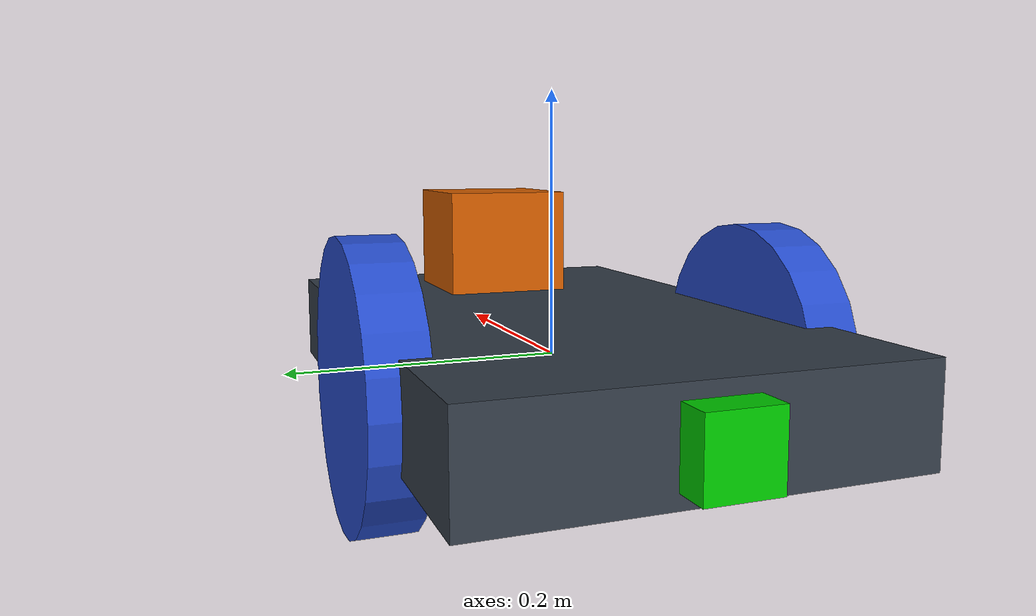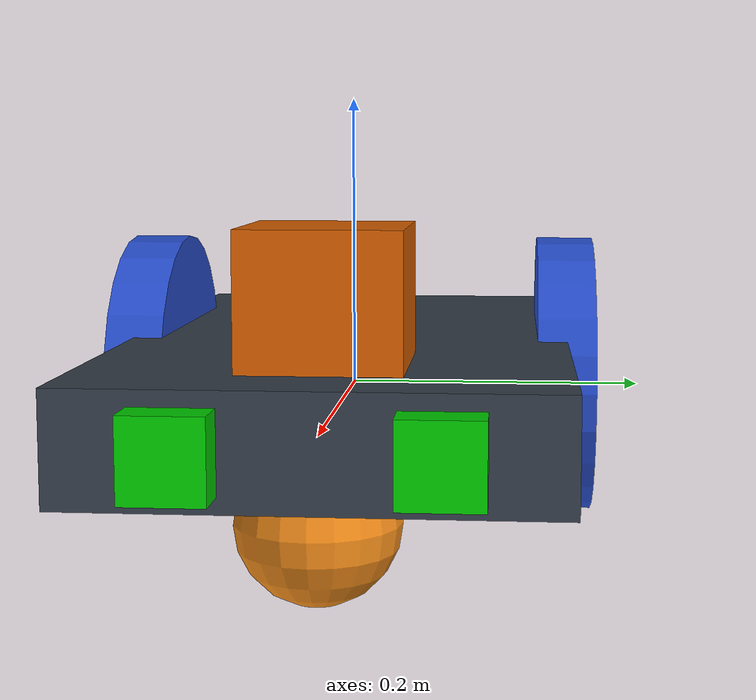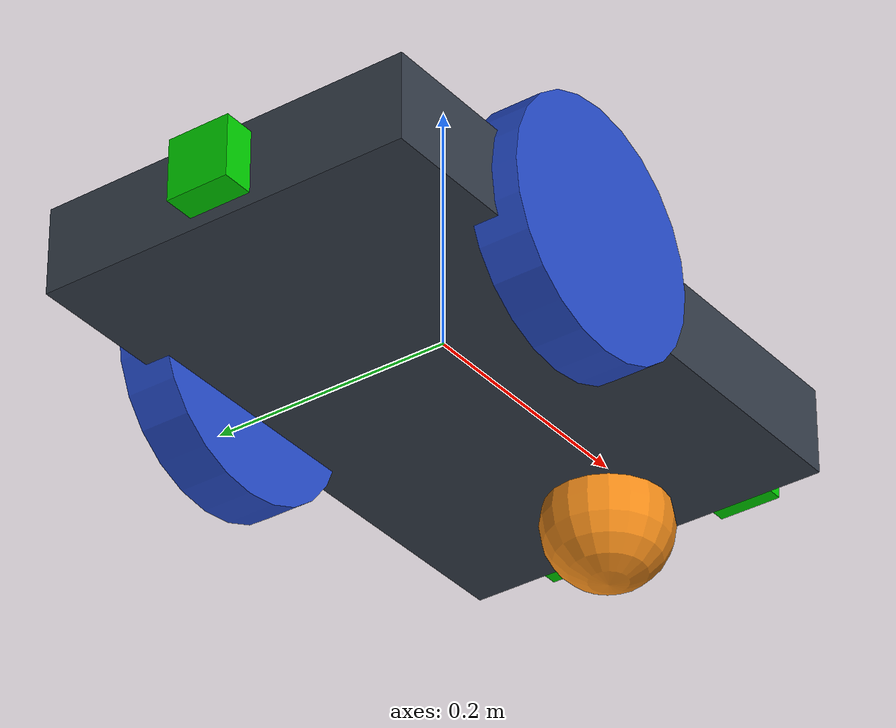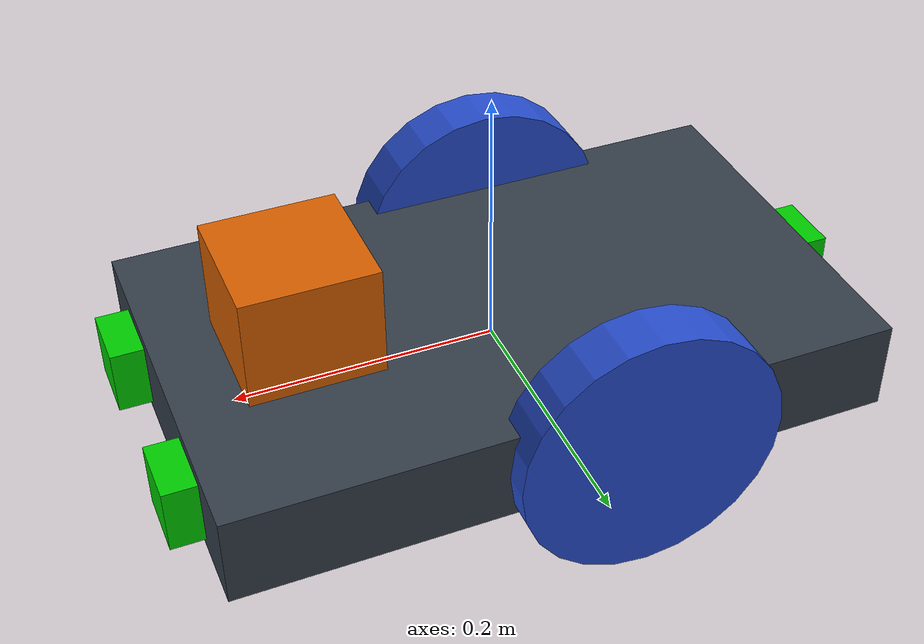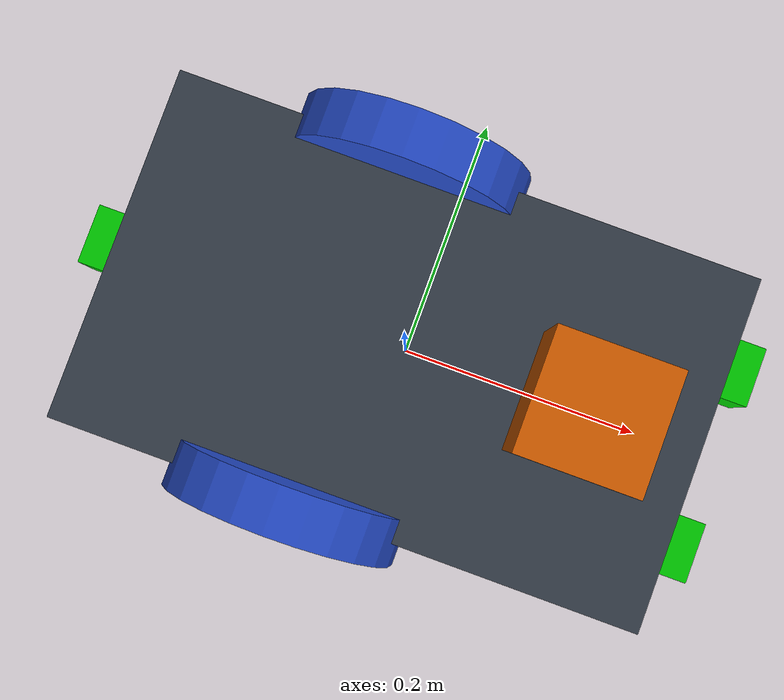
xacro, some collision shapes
<?xml version="1.0" ?>

<robot name="demo_bot" xmlns:xacro="https://www.ros.org/wiki/xacro" >

  <xacro:property name="cameraSize" value="0.05"/>
  <xacro:property name="cameraMass" value="0.1"/>

  <material name="black">
    <color rgba="0.0 0.0 0.0 1.0"/>
  </material>
  <material name="blue">
    <color rgba="0.203125 0.23828125 0.28515625 1.0"/>
  </material>
  <material name="green">
    <color rgba="0.0 0.8 0.0 1.0"/>
  </material>
  <material name="grey">
    <color rgba="0.2 0.2 0.2 1.0"/>
  </material>
  <material name="orange">
    <color rgba="1.0 0.423529411765 0.0392156862745 1.0"/>
  </material>
  <material name="brown">
    <color rgba="0.870588235294 0.811764705882 0.764705882353 1.0"/>
  </material>
  <material name="red">
    <color rgba="0.80078125 0.12890625 0.1328125 1.0"/>
  </material>
  <material name="white">
    <color rgba="1.0 1.0 1.0 1.0"/>
  </material>

  <gazebo reference="link_chassis">
    <material>Gazebo/Orange</material>
  </gazebo>
  <gazebo reference="link_left_wheel">
    <material>Gazebo/Blue</material>
  </gazebo>
  <gazebo reference="link_right_wheel">
    <material>Gazebo/Blue</material>
  </gazebo>

  <link name="link_chassis">
    <!-- pose and inertial -->
    <pose>0 0 0.1 0 0 0</pose>

    <inertial>
      <mass value="5"/>
      <origin rpy="0 0 0" xyz="0 0 0.1"/>
      <inertia ixx="0.0395416666667" ixy="0" ixz="0" iyy="0.106208333333" iyz="0" izz="0.106208333333"/>
    </inertial>

    <collision name="collision_chassis">
      <geometry>
        <box size="0.5 0.3 0.07"/>
      </geometry>
    </collision>

    <visual>
      <origin rpy="0 0 0" xyz="0 0 0"/>
      <geometry>
        <box size="0.5 0.3 0.07"/>
      </geometry>
      <material name="blue"/>
    </visual>

    <!-- caster front -->
    <collision name="caster_front_collision">
      <origin rpy=" 0 0 0" xyz="0.35 0 -0.05"/>
      <geometry>
        <sphere radius="0.05"/>
      </geometry>
      <surface>
        <friction>
          <ode>
            <mu>0</mu>
            <mu2>0</mu2>
            <slip1>1.0</slip1>
            <slip2>1.0</slip2>
          </ode>
        </friction>
      </surface>
    </collision>
    <visual name="caster_front_visual">
      <origin rpy=" 0 0 0" xyz="0.2 0 -0.05"/>
      <geometry>
        <sphere radius="0.05"/>
      </geometry>
    </visual>
    </link>

  <!-- Create wheel right -->

  <link name="link_right_wheel">
    <inertial>
      <mass value="0.2"/>
      <origin rpy="0 1.5707 1.5707" xyz="0 0 0"/>
      <inertia ixx="0.00052666666" ixy="0" ixz="0" iyy="0.00052666666" iyz="0" izz="0.001"/>
    </inertial>

    <collision name="link_right_wheel_collision">
      <origin rpy="0 1.5707 1.5707" xyz="0 0 0" />
      <geometry>
        <cylinder length="0.04" radius="0.1"/>
      </geometry>
    </collision>

    <visual name="link_right_wheel_visual">
      <origin rpy="0 1.5707 1.5707" xyz="0 0 0"/>
      <geometry>
        <cylinder length="0.04" radius="0.1"/>
      </geometry>
    </visual>

  </link>

  <!--   Joint for right wheel  -->
  <joint name="joint_right_wheel" type="continuous">
    <origin rpy="0 0 0" xyz="-0.05 0.15 0"/>
    <child link="link_right_wheel" />
    <parent link="link_chassis"/>
    <axis rpy="0 0 0" xyz="0 1 0"/>
    <limit effort="10000" velocity="1000"/>
    <joint_properties damping="1.0" friction="1.0" />
  </joint>

  <!-- Left Wheel link -->

  <link name="link_left_wheel">
    <inertial>
      <mass value="0.2"/>
      <origin rpy="0 1.5707 1.5707" xyz="0 0 0"/>
      <inertia ixx="0.00052666666" ixy="0" ixz="0" iyy="0.00052666666" iyz="0" izz="0.001"/>
    </inertial>

    <collision name="link_left_wheel_collision">
      <origin rpy="0 1.5707 1.5707" xyz="0 0 0" />
      <geometry>
        <cylinder length="0.04" radius="0.1"/>
      </geometry>
    </collision>

    <visual name="link_left_wheel_visual">
      <origin rpy="0 1.5707 1.5707" xyz="0 0 0"/>
      <geometry>
        <cylinder length="0.04" radius="0.1"/>
      </geometry>
    </visual>

  </link>

  <!--   Joint for left wheel  -->
  <joint name="joint_left_wheel" type="continuous">
    <origin rpy="0 0 0" xyz="-0.05 -0.15 0"/>
    <child link="link_left_wheel" />
    <parent link="link_chassis"/>
    <axis rpy="0 0 0" xyz="0 1 0"/>
    <limit effort="10000" velocity="1000"/>
    <joint_properties damping="1.0" friction="1.0" />
  </joint>

  <!-- camera front 1 -->
  <link name="camera_front_1">
    <collision>
      <origin xyz="0 0 0" rpy="0 0 0"/>
      <geometry>
        <box size="${cameraSize} ${cameraSize} ${cameraSize}"/>
      </geometry>
    </collision>

    <visual>
      <origin xyz="0 0 0" rpy="0 0 0"/>
      <geometry>
        <box size="${cameraSize} ${cameraSize} ${cameraSize}"/>
      </geometry>
      <material name="green"/>
    </visual>

    <!-- camera front 1 inertial -->
    <inertial>
      <mass value="${cameraMass}" />
      <origin xyz="0 0 0" rpy="0 0 0"/>
      <box_inertia m="${cameraMass}" x="${cameraSize}" y="${cameraSize}" z="${cameraSize}" />
      <inertia ixx="0.004166667" ixy="0" ixz="0" iyy="0.004166667" iyz="0" izz="0.004166667" />
    </inertial>
  </link>

  <!-- camera front 1 joint -->
  <joint name="camera_joint_1" type="fixed">
    <axis xyz="0 1 0" />
    <origin xyz=".25 0.075 0" rpy="0 0 0"/>
    <parent link="link_chassis"/>
    <child link="camera_front_1"/>
  </joint>

  <!-- camera front 2 -->
  <link name="camera_front_2">
    <collision>
      <origin xyz="0 0 0" rpy="0 0 0"/>
      <geometry>
        <box size="${cameraSize} ${cameraSize} ${cameraSize}"/>
      </geometry>
    </collision>

    <visual>
      <origin xyz="0 0 0" rpy="0 0 0"/>
      <geometry>
        <box size="${cameraSize} ${cameraSize} ${cameraSize}"/>
      </geometry>
      <material name="green"/>
    </visual>

    <!-- camera front 2 inertial -->
    <inertial>
      <mass value="${cameraMass}" />
      <origin xyz="0 0 0" rpy="0 0 0"/>
      <box_inertia m="${cameraMass}" x="${cameraSize}" y="${cameraSize}" z="${cameraSize}" />
      <inertia ixx="0.004166667" ixy="0" ixz="0" iyy="0.004166667" iyz="0" izz="0.004166667" />
    </inertial>
  </link>

  <!-- camera front 2 joint -->
  <joint name="camera_joint_2" type="fixed">
    <axis xyz="0 1 0" />
    <origin xyz=".25 -0.075 0" rpy="0 0 0"/>
    <parent link="link_chassis"/>
    <child link="camera_front_2"/>
  </joint>

  <!-- front multi camera plugin -->
  <gazebo reference="camera_front_1">
    <material> Gazebo/green</material>

    <sensor type="multicamera" name="stereo_camera">
      <update_rate>30.0</update_rate>
      <visualize>true</visualize>

      <camera name="left">
        <horizontal_fov>1.3962634</horizontal_fov>
        <image>
          <width>800</width>
          <height>800</height>
          <format>R8G8B8</format>
        </image>
        <clip>
          <near>0.02</near>
          <far>300</far>
        </clip>
        <noise>
          <type>gaussian</type>
          <mean>0.0</mean>
          <stddev>0.007</stddev>
        </noise>
      </camera>

      <camera name="right">
        <pose>0 -0.15 0 0 0 0</pose>
        <horizontal_fov>1.3962634</horizontal_fov>
        <image>
          <width>800</width>
          <height>800</height>
          <format>R8G8B8</format>
        </image>
        <clip>
          <near>0.02</near>
          <far>300</far>
        </clip>
        <noise>
          <type>gaussian</type>
          <mean>0.0</mean>
          <stddev>0.007</stddev>
        </noise>
      </camera>

      <plugin name="stereo_camera_controller" filename="libgazebo_ros_multicamera.so">
        <alwaysOn>true</alwaysOn>
        <updateRate>0.0</updateRate>
        <cameraName>bot_2/camera1</cameraName>
        <imageTopicName>image_raw</imageTopicName>
        <cameraInfoTopicName>camera_info</cameraInfoTopicName>
        <frameName>camera_front_1</frameName>
        <rightFrameName>camera_front_2</rightFrameName>
        <hackBaseline>0.07</hackBaseline>
        <distortionK1>0.0</distortionK1>
        <distortionK2>0.0</distortionK2>
        <distortionK3>0.0</distortionK3>
        <distortionT1>0.0</distortionT1>
        <distortionT2>0.0</distortionT2>
      </plugin>
    </sensor>
  </gazebo>

  <!-- Hokuyo Laser -->
  <link name="hokuyo">
    <collision>
      <origin xyz="0 0 0" rpy="0 0 0"/>
      <geometry>
    <box size="0.1 0.1 0.1"/>
      </geometry>
    </collision>

    <visual>
      <origin xyz="0 0 0" rpy="0 0 0"/>
      <geometry>
        <mesh filename="package://demo_bot_gazebo/meshes/hokuyo.dae"/>
      </geometry>
    </visual>

    <inertial>
      <mass value="1e-5" />
      <origin xyz="0 0 0" rpy="0 0 0"/>
      <inertia ixx="1e-6" ixy="0" ixz="0" iyy="1e-6" iyz="0" izz="1e-6" />
    </inertial>
  </link>

  <!-- laser joint -->
  <joint name="hokuyo_joint" type="fixed">
    <axis xyz="0 1 0" />
    <origin xyz=".15 0 .07" rpy="0 0 0"/>
    <parent link="link_chassis"/>
    <child link="hokuyo"/>
  </joint>

  <!-- hokuyo plugin -->
  <gazebo reference="hokuyo">
    <sensor type="ray" name="head_hokuyo_sensor">
      <pose>0 0 0 0 0 0</pose>
      <visualize>false</visualize>
      <update_rate>40</update_rate>
      <ray>
        <scan>
          <horizontal>
            <samples>720</samples>
            <resolution>1</resolution>
            <min_angle>-3.141592654</min_angle>
            <max_angle>3.141592654</max_angle>
          </horizontal>
        </scan>
        <range>
          <min>0.10</min>
          <max>30.0</max>
          <resolution>0.01</resolution>
        </range>
        <noise>
          <type>gaussian</type>
          <mean>0.0</mean>
          <stddev>0.01</stddev>
        </noise>
      </ray>
      <plugin name="gazebo_ros_head_hokuyo_controller" filename="libgazebo_ros_laser.so">
        <topicName>/mybot/laser/scan</topicName>
        <frameName>hokuyo</frameName>
      </plugin>
    </sensor>
  </gazebo>

  <!-- differential drive plugin -->
  <gazebo>
   <plugin filename="libgazebo_ros_diff_drive.so" name="differential_drive_controller">
      <alwaysOn>true</alwaysOn>
      <updateRate>20</updateRate>
      <leftJoint>joint_left_wheel</leftJoint>
      <rightJoint>joint_right_wheel</rightJoint>
      <wheelSeparation>0.4</wheelSeparation>
      <wheelDiameter>0.2</wheelDiameter>
      <torque>0.1</torque>
      <commandTopic>cmd_vel</commandTopic>
      <odometryTopic>odom</odometryTopic>
      <odometryFrame>odom</odometryFrame>
      <robotBaseFrame>link_chassis</robotBaseFrame>
    </plugin>
    </gazebo>

  <!-- camera rear -->
  <link name="camera_rear">
    <collision>
      <origin xyz="0 0 0" rpy="0 0 0"/>
      <geometry>
        <box size="${cameraSize} ${cameraSize} ${cameraSize}"/>
      </geometry>
    </collision>

    <visual>
      <origin xyz="0 0 0" rpy="0 0 0"/>
      <geometry>
        <box size="${cameraSize} ${cameraSize} ${cameraSize}"/>
      </geometry>
      <material name="green"/>
    </visual>

    <!-- camera rear inertial -->
    <inertial>
      <mass value="${cameraMass}" />
      <origin xyz="0 0 0" rpy="0 0 0"/>
      <box_inertia m="${cameraMass}" x="${cameraSize}" y="${cameraSize}" z="${cameraSize}" />
      <inertia ixx="0.004166667" ixy="0" ixz="0" iyy="0.004166667" iyz="0" izz="0.004166667" />
    </inertial>
  </link>

  <!-- camera rear joint -->
  <joint name="camera_rear_joint" type="fixed">
    <axis xyz="0 1 0" />
    <origin xyz="-.25 0 0" rpy="0 0 3.14"/>
    <parent link="link_chassis"/>
    <child link="camera_rear"/>
  </joint>

  <!-- rear camera plugin -->
  <gazebo reference="camera_rear">
    <material>Gazebo/Green</material>
    <sensor type="camera" name="camera1">
      <update_rate>30.0</update_rate>
      <camera name="rear">
        <horizontal_fov>1.3962634</horizontal_fov>
        <image>
          <width>800</width>
          <height>800</height>
          <format>R8G8B8</format>
        </image>
        <clip>
          <near>0.02</near>
          <far>300</far>
        </clip>
      </camera>
      <plugin name="camera_controller" filename="libgazebo_ros_camera.so">
        <alwaysOn>true</alwaysOn>
        <updateRate>0.0</updateRate>
        <cameraName>bot_2/rear</cameraName>
        <imageTopicName>image_raw</imageTopicName>
        <cameraInfoTopicName>camera_info</cameraInfoTopicName>
        <frameName>camera_rear</frameName>
        <hackBaseline>0.07</hackBaseline>
        <distortionK1>0.0</distortionK1>
        <distortionK2>0.0</distortionK2>
        <distortionK3>0.0</distortionK3>
        <distortionT1>0.0</distortionT1>
        <distortionT2>0.0</distortionT2>
      </plugin>
    </sensor>
  </gazebo>

</robot>
